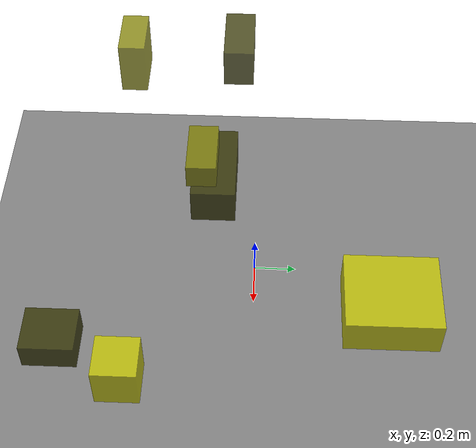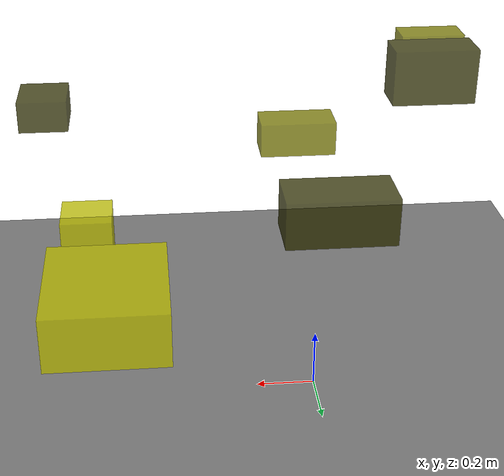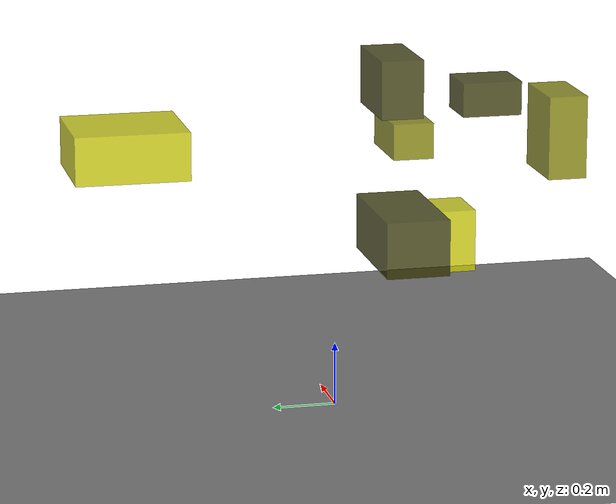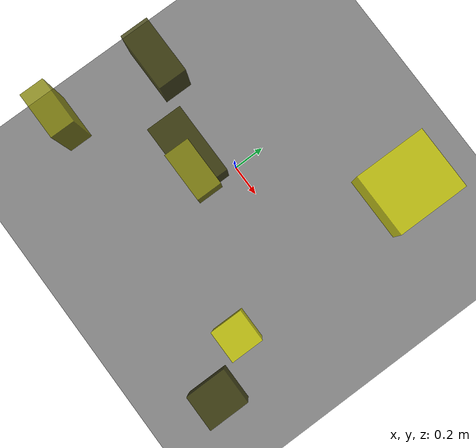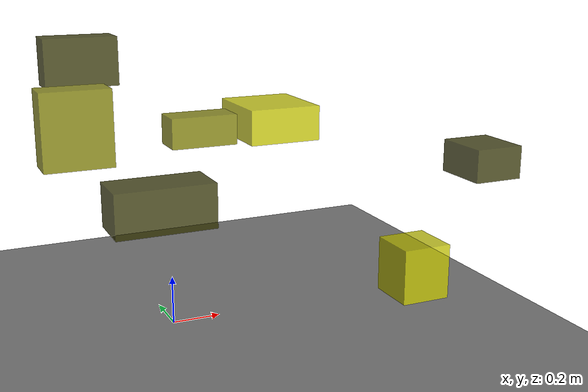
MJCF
<?xml version="1.0"?>
<mujoco model="obstacle_scene">
  <compiler angle="radian" coordinate="local"/>
  <option timestep="0.001" gravity="0 0 -9.81"/>

  <asset>
    <material name="obstacle_mat" rgba="0.8 0.8 0.0 0.8"/>
    <material name="ground_mat" rgba="0.5 0.5 0.5 1"/>
  </asset>

  <worldbody>
    <!-- Ground plane -->
    <geom name="ground" type="plane" size="3 3 0.1" material="ground_mat"/>

    <!-- Obstacles -->
    <body name="obstacle_0" pos="-0.098949 -0.192586 0.572875">
      <geom name="obs_0" type="box" size="0.196935 0.099294 0.088067" rgba="0.2 0.2 0.0 0.8"/>
    </body>
    <body name="obstacle_1" pos="0.052069 -0.232968 0.859613">
      <geom name="obs_1" type="box" size="0.124575 0.063722 0.056355" rgba="0.5 0.5 0.0 0.8"/>
    </body>
    <body name="obstacle_2" pos="0.679220 0.553403 0.708708">
      <geom name="obs_2" type="box" size="0.170159 0.190682 0.081161" rgba="0.8 0.8 0.0 0.8"/>
    </body>
    <body name="obstacle_3" pos="0.937246 -0.758216 0.775493">
      <geom name="obs_3" type="box" size="0.091200 0.103750 0.058907" rgba="0.2 0.2 0.0 0.8"/>
    </body>
    <body name="obstacle_4" pos="-0.473865 -0.568031 0.969592">
      <geom name="obs_4" type="box" size="0.111704 0.057622 0.124225" rgba="0.5 0.5 0.0 0.8"/>
    </body>
    <body name="obstacle_5" pos="0.794429 -0.563259 0.316530">
      <geom name="obs_5" type="box" size="0.096469 0.097132 0.106548" rgba="0.8 0.8 0.0 0.8"/>
    </body>
    <body name="obstacle_6" pos="-0.351733 -0.088853 1.115046">
      <geom name="obs_6" type="box" size="0.131408 0.063470 0.087539" rgba="0.2 0.2 0.0 0.8"/>
    </body>
  </worldbody>
</mujoco>
